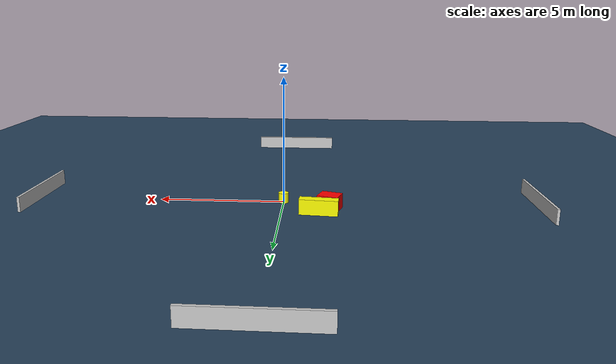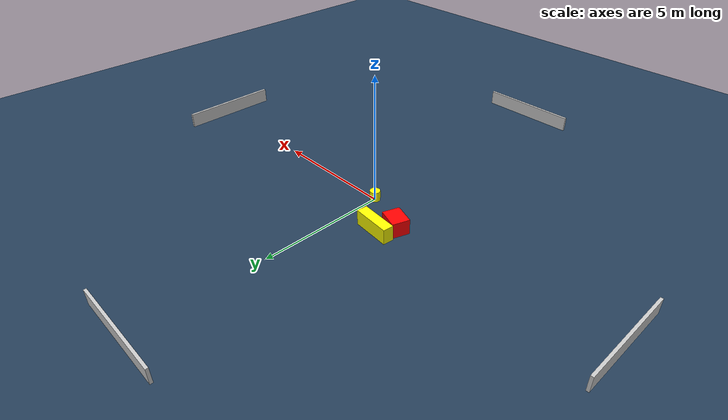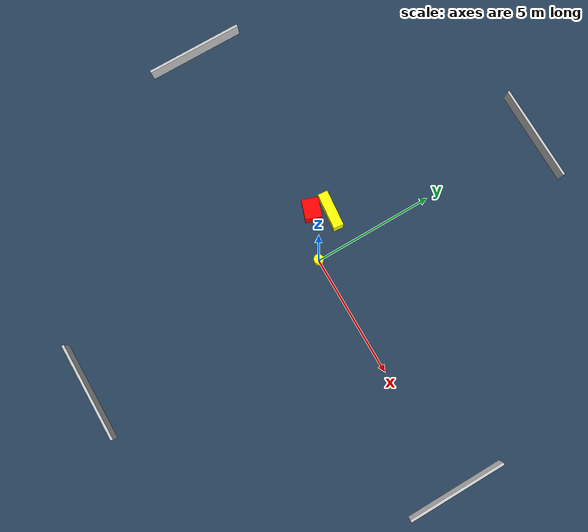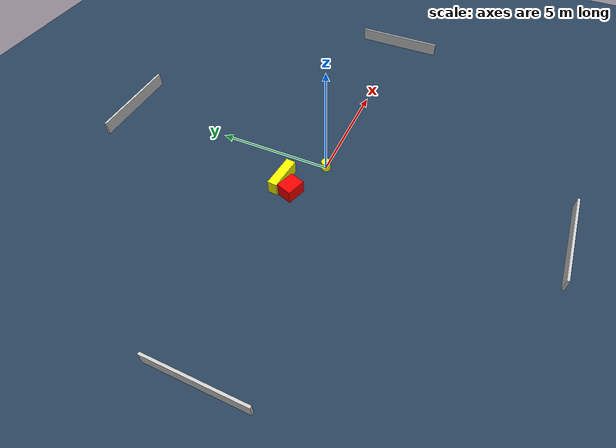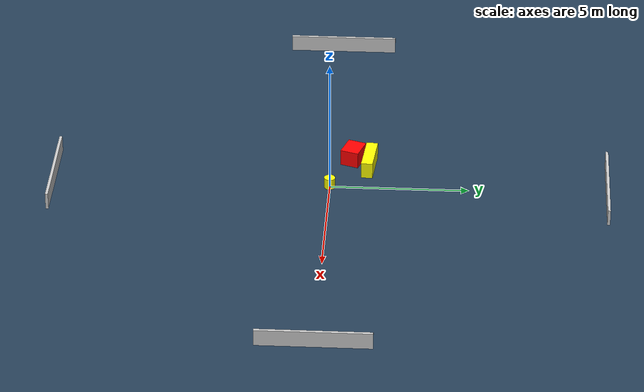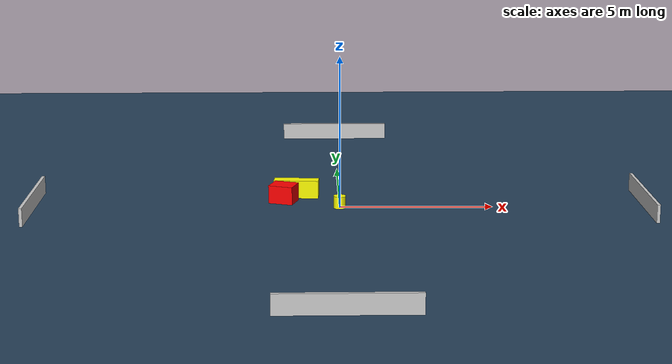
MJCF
<?xml version="1.0" ?>
<mujoco model="generated_environment">
  <option timestep="0.01" integrator="RK4" cone="elliptic"/>
  <default>
    <geom density="1"/>
  </default>
  <asset>
    <texture builtin="gradient" height="3072" name="skybox" rgb1="0.3 0.5 0.7" rgb2="0 0 0" type="skybox" width="512"/>
    <texture builtin="checker" height="300" name="groundplane" rgb1="0.2 0.3 0.4" rgb2="0.1 0.2 0.3" type="2d" width="300"/>
    <material name="groundplane" reflectance="0.2" texrepeat="5 5" texture="groundplane"/>
  </asset>
  <worldbody>
    <light dir="0 0 -1" directional="true" pos="0 0 1.5"/>
    <geom condim="3" friction="0.5 0.005 0.001" material="groundplane" name="floor" pos="0 0 0" size="0 0 0.05" type="plane"/>
    <body name="walls">
      <geom name="wall_1" condim="4" pos="-10.0 0.0 0.3" rgba="0.800000011920929 0.800000011920929 0.800000011920929 1.0" size="0.05 2.0 0.3" type="box"/>
      <geom name="wall_2" condim="4" pos="10.0 0.0 0.3" rgba="0.800000011920929 0.800000011920929 0.800000011920929 1.0" size="0.05 2.0 0.3" type="box"/>
      <geom name="wall_3" condim="4" pos="0.0 -10.0 0.3" rgba="0.800000011920929 0.800000011920929 0.800000011920929 1.0" size="2.0 0.05 0.3" type="box"/>
      <geom name="wall_4" condim="4" pos="0.0 10.0 0.3" rgba="0.800000011920929 0.800000011920929 0.800000011920929 1.0" size="2.0 0.05 0.3" type="box"/>
    </body>
    <body name="robot">
      <joint name="joint_x" type="slide" pos="0 0 0" axis="1 0 0"/>
      <joint name="joint_y" type="slide" pos="0 0 0" axis="0 1 0"/>
      <geom name="robot" type="cylinder" pos="0.0 0.0 0.2" size="0.2 0.2 0.0" mass="5.0" friction="1.0 0.005 0.0001" condim="4" rgba="1.0 1.0 0.0 1.0"/>
    </body>
    <body name="obstacle_1_movable">
      <geom name="obstacle_1_movable" condim="4" pos="-1.4259702933531526 1.3738944327894587 0.3" euler="0 0 264.6478257858606" friction="0.0 0.005 0.001" rgba="1.0 1.0 0.0 1.0" size="0.2075547477676107 0.7437951784412453 0.3" type="box" mass="0.1"/>
      <joint type="free"/>
    </body>
    <body name="obstacle_2_static">
      <geom name="obstacle_2_static" condim="4" pos="-1.8447160918798113 0.7645536612372186 0.3" euler="0 0 161.09784112946437" friction="0.0 0.005 0.001" rgba="1.0 0.0 0.0 1.0" size="0.41114391506423376 0.3382388601287282 0.3" type="box"/>
    </body>
  </worldbody>
  <actuator>
    <motor name="actuator_x" joint="joint_x" gear="1" ctrlrange="-1 1"/>
    <motor name="actuator_y" joint="joint_y" gear="1" ctrlrange="-1 1"/>
  </actuator>
</mujoco>
